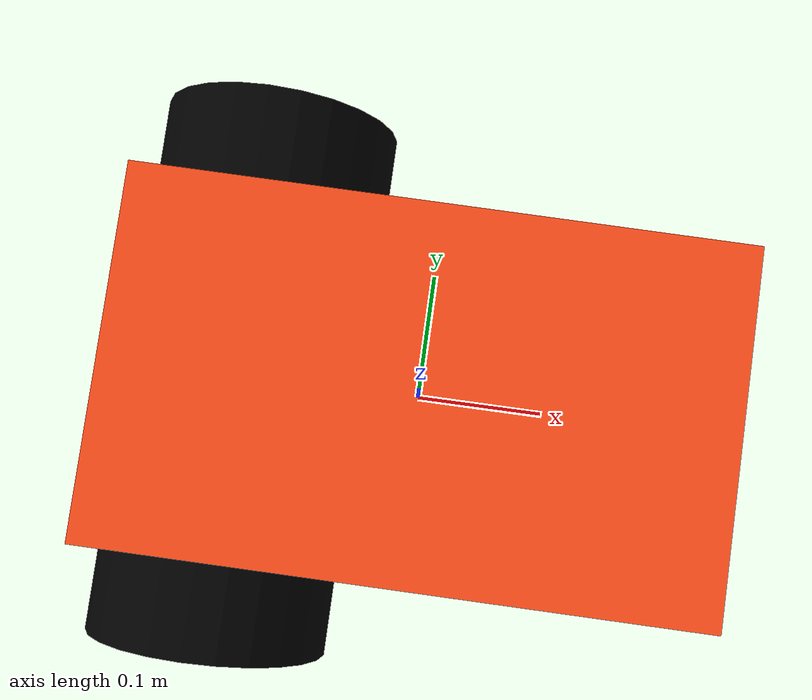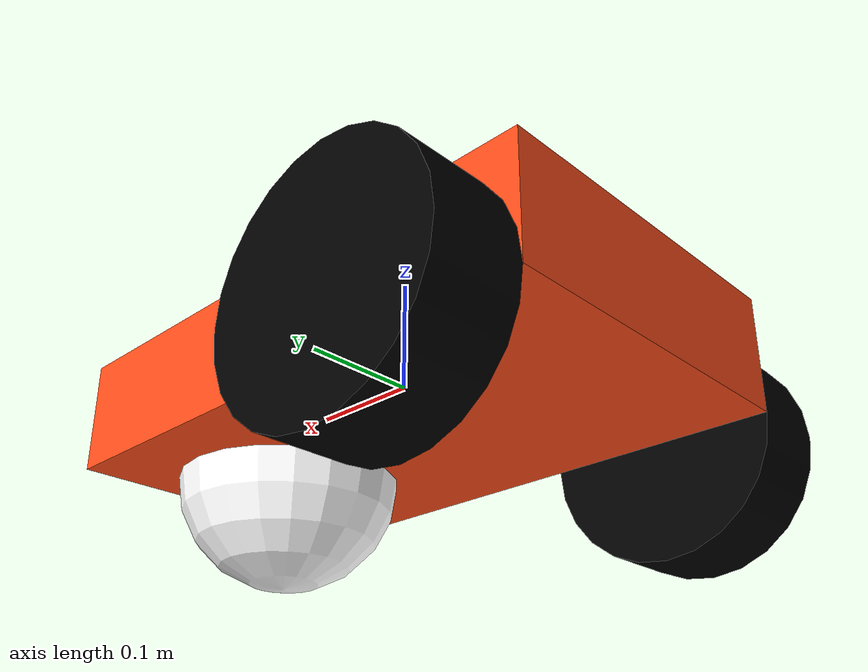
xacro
<?xml version="1.0"?>

<robot name="robot_dif" xmlns:xacro="http://www.ros.org/wiki/xacro">

    <!-- Main body Parameters -->
    <xacro:property name="PI" value="3.14159265"/>
    <xacro:property name="body_length" value="0.5"/>
    <xacro:property name="body_width" value="0.3"/>
    <xacro:property name="body_height" value="0.1"/>
    <xacro:property name="body_density" value="1230.0"/> <!-- Plastic -->
    <xacro:property name="body_mass" value="${body_density * body_length * body_height * body_width}"/>
    <xacro:property name="body_inertia_x" value="${1.0/12.0 * body_mass * (body_height*body_height + body_width*body_width)}"/>
    <xacro:property name="body_inertia_y" value="${1.0/12.0 * body_mass * (body_length*body_length + body_height*body_height)}"/>
    <xacro:property name="body_inertia_z" value="${1.0/12.0 * body_mass * (body_length*body_length + body_width*body_width)}"/>

    <!-- Wheels parameters -->

    <xacro:property name="wheel_radius" value="0.1"/>
    <xacro:property name="wheel_width" value="0.075"/>
    <xacro:property name="wheel_separation" value="${body_width + wheel_width}"/>
    <xacro:property name="wheel_offset" value="${body_length/2 - wheel_radius}"/>
    <xacro:property name="wheel_density" value="900"/> <!-- Ruber -->
    <xacro:property name="wheel_mass" value="${wheel_density * PI * wheel_radius * wheel_radius * wheel_width}"/>
    <xacro:property name="wheel_inertia_x" value="${1.0/12.0 * wheel_mass * (3*wheel_radius*wheel_radius + wheel_width*wheel_width)}"/>
    <xacro:property name="wheel_inertia_y" value="${1.0/12.0 * wheel_mass * (3*wheel_radius*wheel_radius + wheel_width*wheel_width)}"/>
    <xacro:property name="wheel_inertia_z" value="${1.0/2.0 * wheel_mass * wheel_radius * wheel_radius}"/>

    <!-- Caster wheel parameters -->

    <xacro:property name="caster_radius" value="0.1"/>
    <xacro:property name="caster_offset" value="${body_length/2 - caster_radius}"/>
    <xacro:property name="caster_density" value="0.1"/>
    <xacro:property name="caster_mass" value="${caster_density * 4.0/3.0 * PI * caster_radius * caster_radius * caster_radius}"/>
    <xacro:property name="caster_inertia_x" value="${2.0/5.0 * caster_mass * caster_radius * caster_radius}"/>
    <xacro:property name="caster_inertia_y" value="${2.0/5.0 * caster_mass * caster_radius * caster_radius}"/>
    <xacro:property name="caster_inertia_z" value="${2.0/5.0 * caster_mass * caster_radius * caster_radius}"/>

    <!-- Colors -->

    <material name="orange">
        <color rgba="1 0.3 0.1 1"/>
    </material>
    <material name="black">
        <color rgba="0.0 0.0 0.0 1.0"/>
    </material>
    <material name="yellow">
        <color rgba="216.0 221.0 0.0 1.0"/>
    </material>
    <material name="white">
        <color rgba="225.0 225.0 225.0 1.0"/>
    </material>
    <material name="blue">
        <color rgba="0.0 5.0 225.0 1.0"/>
    </material>
    <!-- Control Parameters -->

    <xacro:property name="max_linear_acceleration" value="10"/>

    <!-- Links -->

    <!-- Body Link -->
    <link name="body_link">
        <visual>
            <origin xyz="0.0 0.0 0.0" rpy="0.0 0.0 0.0"/>
            <geometry>
                <box size="${body_length} ${body_width} ${body_height}"/>
            </geometry>
            <material name="orange"/>
        </visual>
        <collision>
            <origin xyz="0.0 0.0 0.0" rpy="0.0 0.0 0.0"/>
            <geometry>
                <box size="${body_length} ${body_width} ${body_height}"/>
            </geometry>
        </collision>
        <inertial>
            <mass value="10"/>
            <inertia ixx="${body_inertia_x}" ixy="0.0" ixz="0.0" iyy="${body_inertia_y}" iyz="0" izz="${body_inertia_z}"/>
            <origin xyz="0 0 0" rpy="0 0 0"/>
        </inertial>
    </link>
    <gazebo reference="body_link">
        <material>Gazebo/Orange</material>
    </gazebo>

    <!-- Left Wheel -->
    <link name="left_wheel_link">
        <visual>
            <origin xyz="0.0 0.0 0.0" rpy="1.570795 0.0 0.0"/>
            <geometry>
                <cylinder radius="${wheel_radius}" length="${wheel_width}"/>
            </geometry>
            <material name="black">
            </material>
        </visual>
        <collision>
            <origin xyz="0.0 0.0 0.0" rpy="1.570795 0.0 0.0"/>
            <geometry>
                <cylinder radius="${wheel_radius}" length="${wheel_width}"/>
            </geometry>
        </collision>
        <inertial>
            <mass value="2"/>
            <inertia ixx="${wheel_inertia_x}" ixy="0.0" ixz="0.0" iyy="${wheel_inertia_y}" iyz="0" izz="${wheel_inertia_z}"/>
            <origin xyz="0.0 0.0 0.0" rpy="1.570795 0.0 0.0"/>
        </inertial>
    </link>
     <gazebo reference="left_wheel_link">
        <material>Gazebo/Black</material>
    </gazebo>

    <!-- Right Wheel -->
    <link name="right_wheel_link">
        <visual>
            <origin xyz="0.0 0.0 0.0" rpy="1.570795 0.0 0.0"/>
            <geometry>
                <cylinder radius="${wheel_radius}" length="${wheel_width}"/>
            </geometry>
            <material name="black"/>
        </visual>
        <collision>
            <origin xyz="0.0 0.0 0.0" rpy="1.570795 0.0 0.0"/>
            <geometry>
                <cylinder radius="${wheel_radius}" length="${wheel_width}"/>
            </geometry>
        </collision>
        <inertial>
            <mass value="2"/>
            <inertia ixx="${wheel_inertia_x}" ixy="0.0" ixz="0.0" iyy="${wheel_inertia_y}" iyz="0" izz="${wheel_inertia_z}"/>
            <origin xyz="0.0 0.0 0.0" rpy="1.570795 0.0 0.0"/>
        </inertial>
    </link>
     <gazebo reference="right_wheel_link">
        <material>Gazebo/Black</material>
    </gazebo>

    <!-- Caster Wheel -->
    <link name="caster_link">
        <visual>
            <origin xyz="0.0 0.0 0.0" rpy="0.0 0.0 0.0"/>
            <geometry>
                <sphere radius="${caster_radius}"/>
            </geometry>
            <material name="caster_material">
                <color rgba="1.0 1.0 1.0 0.0"/>
            </material>
        </visual>
        <collision>
            <origin xyz="0.0 0.0 0.0" rpy="0.0 0.0 0.0"/>
            <geometry>
                <sphere radius="${caster_radius}"/>
            </geometry>
        </collision>
        <inertial>
            <mass value="0.5"/>
            <inertia ixx="${caster_inertia_x}" ixy="0.0" ixz="0.0" iyy="${caster_inertia_y}" iyz="0" izz="${caster_inertia_z}"/>
            <origin xyz="0 0 0" rpy="0 0 0"/>
        </inertial>
    </link>

    <!-- Joints -->

    <!-- Left Wheel Joint -->
    <joint name="left_wheel_joint" type="continuous">
        <origin xyz="-${wheel_offset} ${wheel_separation/2} -${wheel_radius/2}" rpy="0 0 0"/>
        <parent link="body_link"/>
        <child link="left_wheel_link"/>
        <axis xyz="0 1 0"/>
        <limit effort="100" velocity="10.0"/>
        <dynamics damping="0.1" friction="0.1"/>
    </joint>

    <!-- Right Wheel Joint -->
    <joint name="right_wheel_joint" type="continuous">
        <origin xyz="-${wheel_offset} ${-wheel_separation/2} -${wheel_radius/2}" rpy="0 0 0"/>
        <parent link="body_link"/>
        <child link="right_wheel_link"/>
        <axis xyz="0 1 0"/>
        <limit effort="100" velocity="10.0"/>
        <dynamics damping="0.1" friction="0.1"/>
    </joint>

    <!-- Caster Wheel Joint (fixed) -->
    <joint name="caster_joint" type="fixed">
        <origin xyz="${caster_offset} 0 -${caster_radius/2}" rpy="0 0 0"/>
        <parent link="body_link"/>
        <child link="caster_link"/>
    </joint>

    <!-- Gazebo Parameters -->
    <gazebo reference="body_link">
        <mu1>1.0</mu1>
        <mu2>1.0</mu2>
    </gazebo>

    <gazebo reference="right_wheel_link">
        <mu1>1.0</mu1>
        <mu2>1.0</mu2>
    </gazebo>

    <gazebo reference="left_wheel_link">
        <mu1>1.0</mu1>
        <mu2>1.0</mu2>
    </gazebo>

    <gazebo reference="caster_link">
        <mu1>0.000001</mu1>
        <mu2>0.000001</mu2>
    </gazebo>

</robot>
